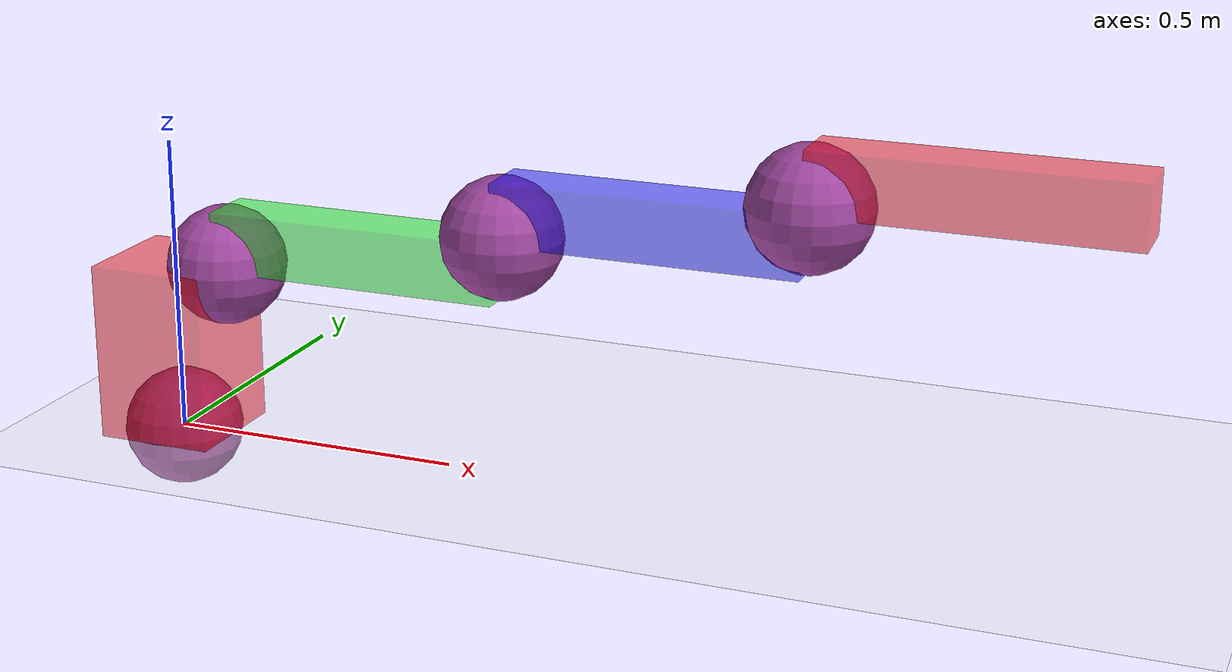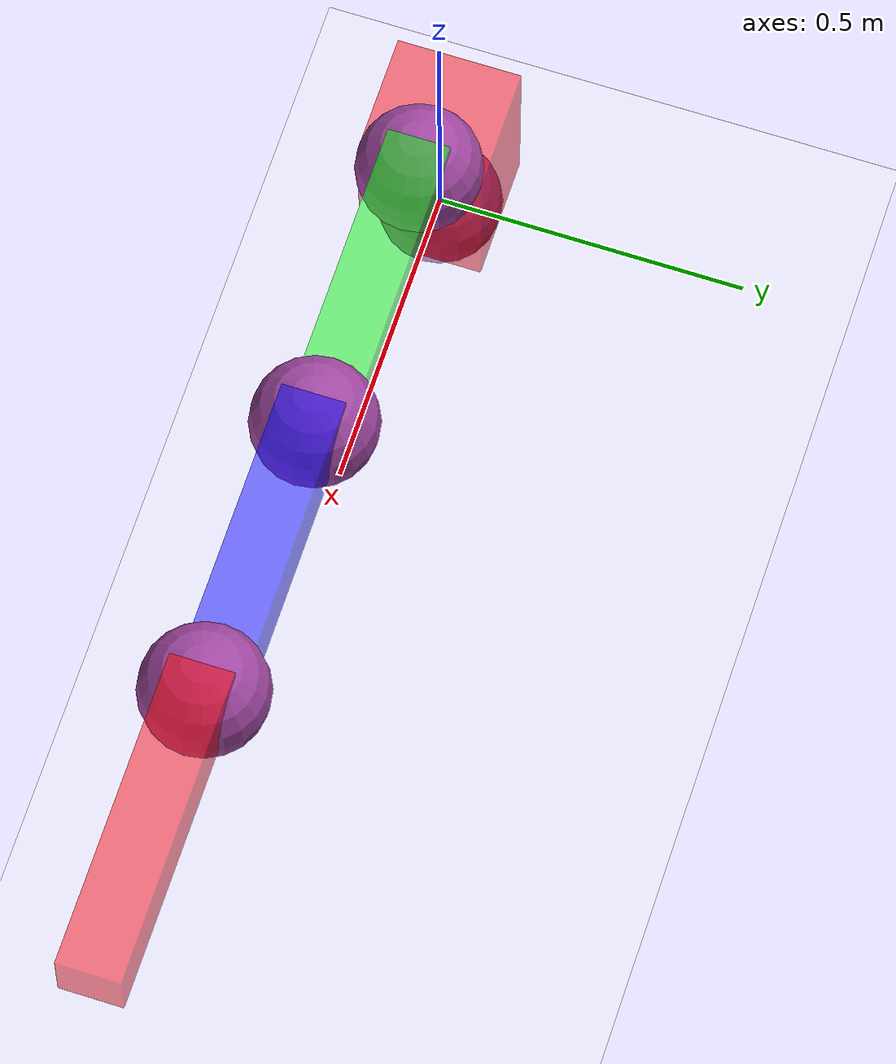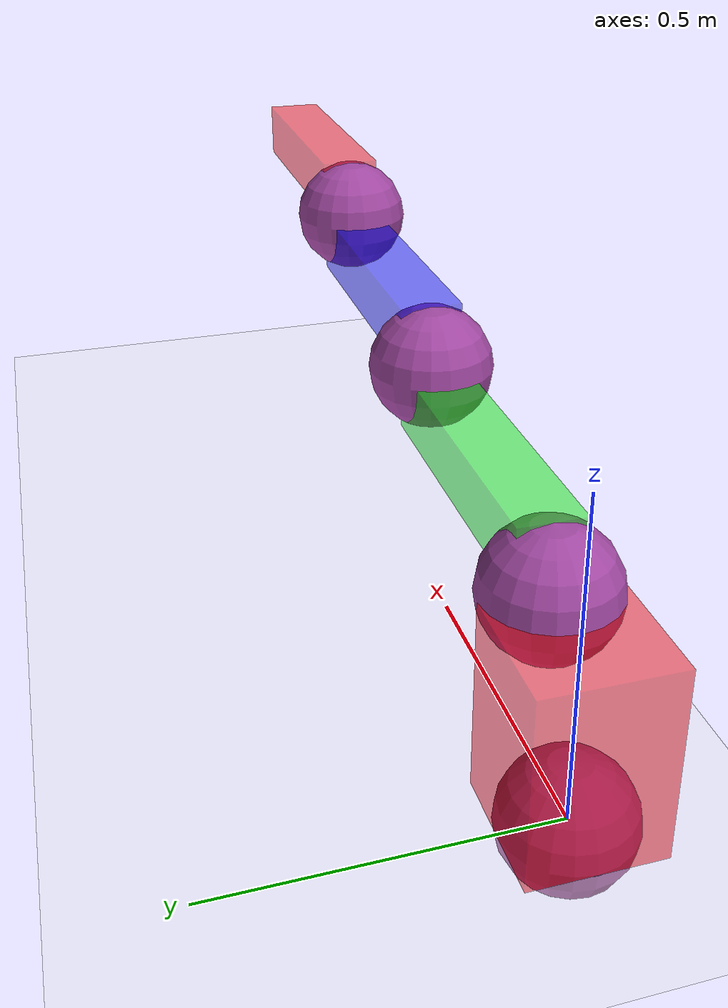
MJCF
<mujoco>

    <!-- usar este repo para analizar las formas de escribir estos archivos:
    https://github.com/google-deepmind/mujoco_menagerie/tree/main/kinova_gen3
        -->

	<option gravity="0 0 -9.81">
		<flag contact="enable" />
	</option>
    <!-- no funciona, no se por que xd-->
    <visual>
        <rgba contactforce="1 1 1 1"/>
    </visual>
	<worldbody>
        <light diffuse=".5 .5 .5" pos="0 0 5" dir="0 0 -1" />
        <body name="world_link" pos="0 0 0">
            <geom type="sphere" pos="0 0 0" size="0.1 0.1 0.1" rgba="0.639 0.286 0.643 1" />
            <geom type="plane" pos="0 0 0" size="10 10 0.1" rgba="1 1 1 1" />
            <body name="base" pos="0 0 0.15">
                <!--El size esta definido como la mitad de longitud (o radio segun el caso) por eje-->
                <geom type="box" size="0.1 0.1 0.15" rgba="1 0 0 0.5" />
                <body name="link_1" pos="0.1 0 0.15">
                    <geom type="sphere" pos="0 0 0" size="0.1 0.1 0.1" rgba="0.639 0.286 0.643 1" />
                    <geom type="box" pos="0.25 0 0.05" size="0.25 0.05 0.05" rgba="0 1 0 0.5" />
                    <joint name="link_1_joint" type="hinge" axis="0 0 1" range="-180 180" limited="true"/>
                    <body name="link_2" pos="0.5 0 0.1">
                        <geom type="sphere" pos="0 0 0" size="0.1 0.1 0.1" rgba="0.639 0.286 0.643 1" />
                        <geom type="box" pos="0.25 0 0.05" size="0.25 0.05 0.05" rgba="0 0 1 0.5" />
                        <joint name="link_2_joint" type="hinge" axis="0 0 1" range="-180 180" limited="true"/>
                        <body name="link_3" pos="0.5 0 0.1">
                            <geom type="sphere" pos="0 0 0" size="0.1 0.1 0.1" rgba="0.639 0.286 0.643 1" />
                            <geom type="box" pos="0.25 0 0.05" size="0.25 0.05 0.05" rgba="1 0 0 0.5" />
                            <joint name="link_3_joint" type="hinge" axis="0 0 1" range="-180 180" limited="true"/>
                        </body>
                    </body>
                </body>
            </body>
        </body>
	</worldbody>
</mujoco>
